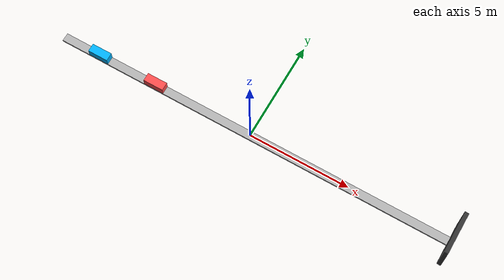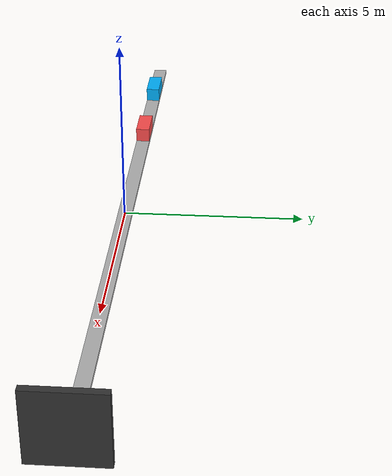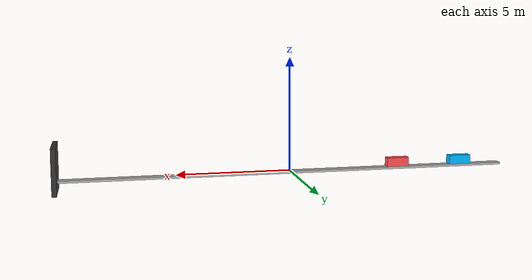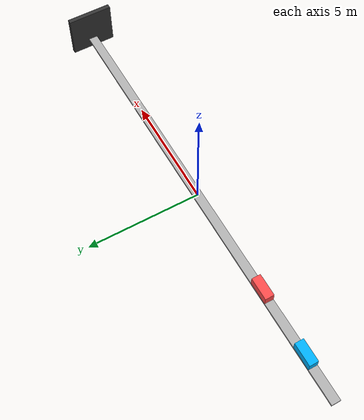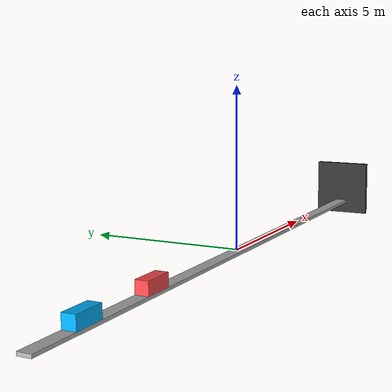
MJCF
<mujoco>
  <option gravity="0 0 -9.81"/>
  <worldbody>
    <body name="track" pos="0 0 -0.05">
      <geom type="box" size="10 0.2 0.05" rgba="0.7 0.7 0.7 1"/>
    </body>
    <body name="wall" pos="10 0 0.5">
      <geom type="box" size="0.1 1 1" rgba="0.2 0.2 0.2 1"/>
    </body>
    <body name="elastic_cart" pos="-8 0 0.2">
      <geom type="box" size="0.5 0.2 0.2" density="1" rgba="0 0.7 1 1" elasticity="1"/>
      <joint name="elastic_cart_slide" type="slide" axis="1 0 0"/>
    </body>
    <body name="inelastic_cart" pos="-5 0 0.2">
      <geom type="box" size="0.5 0.2 0.2" density="1" rgba="1 0.3 0.3 1" elasticity="0.5"/>
      <joint name="inelastic_cart_slide" type="slide" axis="1 0 0"/>
    </body>
  </worldbody>
</mujoco>
